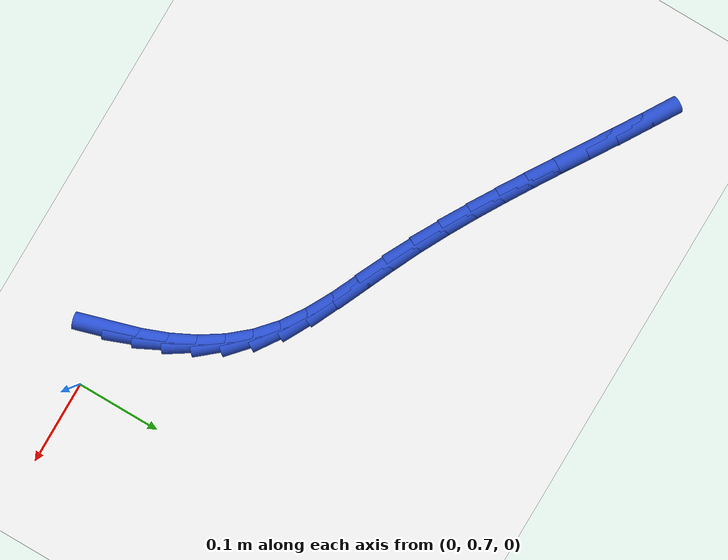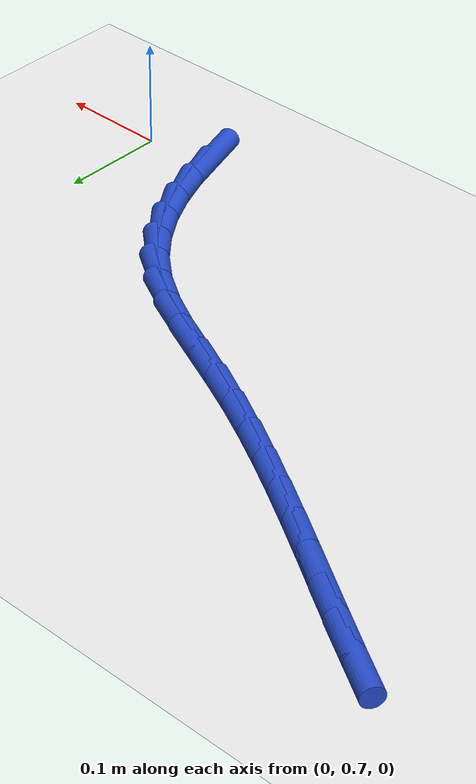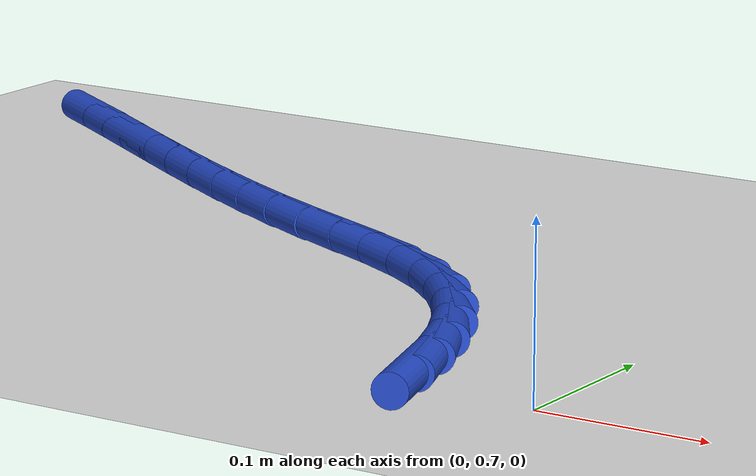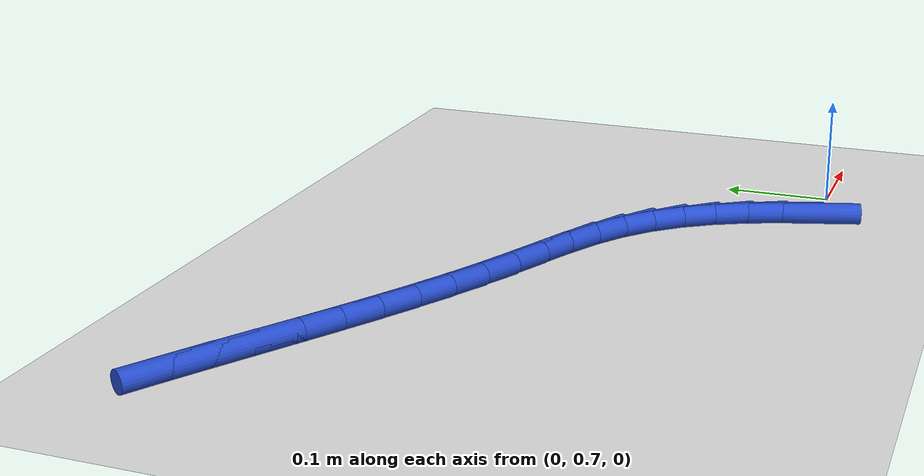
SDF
<sdf version="1.6">
 <world name="default">
  <model name="ground_plane">
   <static>1</static>
   <link name="link">
    <collision name="collision">
     <geometry><plane><normal>0 0 1</normal><size>100 100</size></plane></geometry>
     <surface><friction><ode><mu>100</mu><mu2>50</mu2></ode></friction></surface>
    </collision>
    <visual name="visual">
     <cast_shadows>0</cast_shadows>
     <geometry><plane><normal>0 0 1</normal><size>100 100</size></plane></geometry>
     <material>
      <script><uri>file://media/materials/scripts/gazebo.material</uri><name>Gazebo/WhiteGlow</name></script>
     </material>
    </visual>
   </link>
  </model>
  <model name="line">
   <link name="link_19">
    <pose>-0.07065531532382874 0.6975486072662584 0.01 0 1.57 -1.2827110960851376</pose>
    <collision name="collision">
     <geometry><cylinder><radius>0.01</radius><length>0.08</length></cylinder></geometry>
    </collision>
    <visual name="visual">
     <material>
      <script><name>Gazebo/Blue</name><uri>file://media/materials/scripts/gazebo.material</uri></script>
     </material>
     <geometry><cylinder><radius>0.01</radius><length>0.08</length></cylinder></geometry>
    </visual>
   </link>
   <link name="link_20">
    <pose>-0.08040591583079497 0.7304532859953504 0.01 0 1.57 -1.200634262246339</pose>
    <collision name="collision">
     <geometry><cylinder><radius>0.01</radius><length>0.08</length></cylinder></geometry>
    </collision>
    <visual name="visual">
     <material>
      <script><name>Gazebo/Blue</name><uri>file://media/materials/scripts/gazebo.material</uri></script>
     </material>
     <geometry><cylinder><radius>0.01</radius><length>0.08</length></cylinder></geometry>
    </visual>
   </link>
   <link name="link_21">
    <pose>-0.09245948879256752 0.7615152233999523 0.01 0 1.57 -1.1033015774696588</pose>
    <collision name="collision">
     <geometry><cylinder><radius>0.01</radius><length>0.08</length></cylinder></geometry>
    </collision>
    <visual name="visual">
     <material>
      <script><name>Gazebo/Blue</name><uri>file://media/materials/scripts/gazebo.material</uri></script>
     </material>
     <geometry><cylinder><radius>0.01</radius><length>0.08</length></cylinder></geometry>
    </visual>
   </link>
   <link name="link_22">
    <pose>-0.10709343601660229 0.7905037715959723 0.01 0 1.57 -0.9905636971994166</pose>
    <collision name="collision">
     <geometry><cylinder><radius>0.01</radius><length>0.08</length></cylinder></geometry>
    </collision>
    <visual name="visual">
     <material>
      <script><name>Gazebo/Blue</name><uri>file://media/materials/scripts/gazebo.material</uri></script>
     </material>
     <geometry><cylinder><radius>0.01</radius><length>0.08</length></cylinder></geometry>
    </visual>
   </link>
   <link name="link_23">
    <pose>-0.12458515931035519 0.8171882826993191 0.01 0 1.57 -0.8639140105229496</pose>
    <collision name="collision">
     <geometry><cylinder><radius>0.01</radius><length>0.08</length></cylinder></geometry>
    </collision>
    <visual name="visual">
     <material>
      <script><name>Gazebo/Blue</name><uri>file://media/materials/scripts/gazebo.material</uri></script>
     </material>
     <geometry><cylinder><radius>0.01</radius><length>0.08</length></cylinder></geometry>
    </visual>
   </link>
   <link name="link_24">
    <pose>-0.14521206048128218 0.8413381088259013 0.01 0 1.57 -0.7270155489127893</pose>
    <collision name="collision">
     <geometry><cylinder><radius>0.01</radius><length>0.08</length></cylinder></geometry>
    </collision>
    <visual name="visual">
     <material>
      <script><name>Gazebo/Blue</name><uri>file://media/materials/scripts/gazebo.material</uri></script>
     </material>
     <geometry><cylinder><radius>0.01</radius><length>0.08</length></cylinder></geometry>
    </visual>
   </link>
   <link name="link_25">
    <pose>-0.169251541336839 0.862722602091627 0.01 0 1.57 -0.5903654275370994</pose>
    <collision name="collision">
     <geometry><cylinder><radius>0.01</radius><length>0.08</length></cylinder></geometry>
    </collision>
    <visual name="visual">
     <material>
      <script><name>Gazebo/Blue</name><uri>file://media/materials/scripts/gazebo.material</uri></script>
     </material>
     <geometry><cylinder><radius>0.01</radius><length>0.08</length></cylinder></geometry>
    </visual>
   </link>
   <link name="link_26">
    <pose>-0.19686103406386943 0.8812233097342668 0.01 0 1.57 -0.4906588559922567</pose>
    <collision name="collision">
     <geometry><cylinder><radius>0.01</radius><length>0.08</length></cylinder></geometry>
    </collision>
    <visual name="visual">
     <material>
      <script><name>Gazebo/Blue</name><uri>file://media/materials/scripts/gazebo.material</uri></script>
     </material>
     <geometry><cylinder><radius>0.01</radius><length>0.08</length></cylinder></geometry>
    </visual>
   </link>
   <link name="link_27">
    <pose>-0.22735219356879652 0.8975127466095674 0.01 0 1.57 -0.43682327546118427</pose>
    <collision name="collision">
     <geometry><cylinder><radius>0.01</radius><length>0.08</length></cylinder></geometry>
    </collision>
    <visual name="visual">
     <material>
      <script><name>Gazebo/Blue</name><uri>file://media/materials/scripts/gazebo.material</uri></script>
     </material>
     <geometry><cylinder><radius>0.01</radius><length>0.08</length></cylinder></geometry>
    </visual>
   </link>
   <link name="link_28">
    <pose>-0.259673018149431 0.9126035178170462 0.01 0 1.57 -0.4231640305605351</pose>
    <collision name="collision">
     <geometry><cylinder><radius>0.01</radius><length>0.08</length></cylinder></geometry>
    </collision>
    <visual name="visual">
     <material>
      <script><name>Gazebo/Blue</name><uri>file://media/materials/scripts/gazebo.material</uri></script>
     </material>
     <geometry><cylinder><radius>0.01</radius><length>0.08</length></cylinder></geometry>
    </visual>
   </link>
   <link name="link_29">
    <pose>-0.2927700964962224 0.9275095467155354 0.01 0 1.57 -0.44528197395674884</pose>
    <collision name="collision">
     <geometry><cylinder><radius>0.01</radius><length>0.08</length></cylinder></geometry>
    </collision>
    <visual name="visual">
     <material>
      <script><name>Gazebo/Blue</name><uri>file://media/materials/scripts/gazebo.material</uri></script>
     </material>
     <geometry><cylinder><radius>0.01</radius><length>0.08</length></cylinder></geometry>
    </visual>
   </link>
   <link name="link_30">
    <pose>-0.325636802048556 0.9431951593816497 0.01 0 1.57 -0.47921975140571127</pose>
    <collision name="collision">
     <geometry><cylinder><radius>0.01</radius><length>0.08</length></cylinder></geometry>
    </collision>
    <visual name="visual">
     <material>
      <script><name>Gazebo/Blue</name><uri>file://media/materials/scripts/gazebo.material</uri></script>
     </material>
     <geometry><cylinder><radius>0.01</radius><length>0.08</length></cylinder></geometry>
    </visual>
   </link>
   <link name="link_31">
    <pose>-0.3578957967348545 0.9599575628094738 0.01 0 1.57 -0.507915673638968</pose>
    <collision name="collision">
     <geometry><cylinder><radius>0.01</radius><length>0.08</length></cylinder></geometry>
    </collision>
    <visual name="visual">
     <material>
      <script><name>Gazebo/Blue</name><uri>file://media/materials/scripts/gazebo.material</uri></script>
     </material>
     <geometry><cylinder><radius>0.01</radius><length>0.08</length></cylinder></geometry>
    </visual>
   </link>
   <link name="link_32">
    <pose>-0.3896203573262975 0.9776162597831655 0.01 0 1.57 -0.5309661247453427</pose>
    <collision name="collision">
     <geometry><cylinder><radius>0.01</radius><length>0.08</length></cylinder></geometry>
    </collision>
    <visual name="visual">
     <material>
      <script><name>Gazebo/Blue</name><uri>file://media/materials/scripts/gazebo.material</uri></script>
     </material>
     <geometry><cylinder><radius>0.01</radius><length>0.08</length></cylinder></geometry>
    </visual>
   </link>
   <link name="link_33">
    <pose>-0.42089355643501425 0.9959803683546918 0.01 0 1.57 -0.5483680764258985</pose>
    <collision name="collision">
     <geometry><cylinder><radius>0.01</radius><length>0.08</length></cylinder></geometry>
    </collision>
    <visual name="visual">
     <material>
      <script><name>Gazebo/Blue</name><uri>file://media/materials/scripts/gazebo.material</uri></script>
     </material>
     <geometry><cylinder><radius>0.01</radius><length>0.08</length></cylinder></geometry>
    </visual>
   </link>
   <link name="link_34">
    <pose>-0.4517984666731342 1.0148590065760208 0.01 0 1.57 -0.5601238442951624</pose>
    <collision name="collision">
     <geometry><cylinder><radius>0.01</radius><length>0.08</length></cylinder></geometry>
    </collision>
    <visual name="visual">
     <material>
      <script><name>Gazebo/Blue</name><uri>file://media/materials/scripts/gazebo.material</uri></script>
     </material>
     <geometry><cylinder><radius>0.01</radius><length>0.08</length></cylinder></geometry>
    </visual>
   </link>
   <link name="link_35">
    <pose>-0.48241816065278764 1.0340612924991217 0.01 0 1.57 -0.5662242920693836</pose>
    <collision name="collision">
     <geometry><cylinder><radius>0.01</radius><length>0.08</length></cylinder></geometry>
    </collision>
    <visual name="visual">
     <material>
      <script><name>Gazebo/Blue</name><uri>file://media/materials/scripts/gazebo.material</uri></script>
     </material>
     <geometry><cylinder><radius>0.01</radius><length>0.08</length></cylinder></geometry>
    </visual>
   </link>
   <link name="link_36">
    <pose>-0.5128357109861038 1.0533963441759617 0.01 0 1.57 -0.5666372423448269</pose>
    <collision name="collision">
     <geometry><cylinder><radius>0.01</radius><length>0.08</length></cylinder></geometry>
    </collision>
    <visual name="visual">
     <material>
      <script><name>Gazebo/Blue</name><uri>file://media/materials/scripts/gazebo.material</uri></script>
     </material>
     <geometry><cylinder><radius>0.01</radius><length>0.08</length></cylinder></geometry>
    </visual>
   </link>
   <link name="link_37">
    <pose>-0.5431341902852126 1.0726732796585092 0.01 0 1.57 -0.5613009325293503</pose>
    <collision name="collision">
     <geometry><cylinder><radius>0.01</radius><length>0.08</length></cylinder></geometry>
    </collision>
    <visual name="visual">
     <material>
      <script><name>Gazebo/Blue</name><uri>file://media/materials/scripts/gazebo.material</uri></script>
     </material>
     <geometry><cylinder><radius>0.01</radius><length>0.08</length></cylinder></geometry>
    </visual>
   </link>
   <link name="link_38">
    <pose>-0.5733966711622434 1.0917012169987323 0.01 0 1.57 -0.550122548962029</pose>
    <collision name="collision">
     <geometry><cylinder><radius>0.01</radius><length>0.08</length></cylinder></geometry>
    </collision>
    <visual name="visual">
     <material>
      <script><name>Gazebo/Blue</name><uri>file://media/materials/scripts/gazebo.material</uri></script>
     </material>
     <geometry><cylinder><radius>0.01</radius><length>0.08</length></cylinder></geometry>
    </visual>
   </link>
  </model>
 </world>
</sdf>
